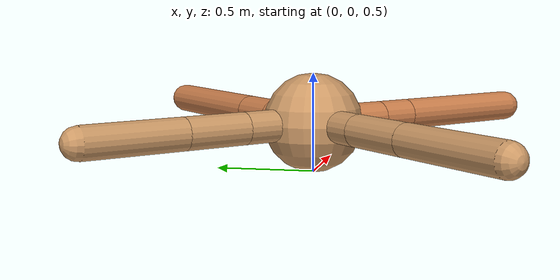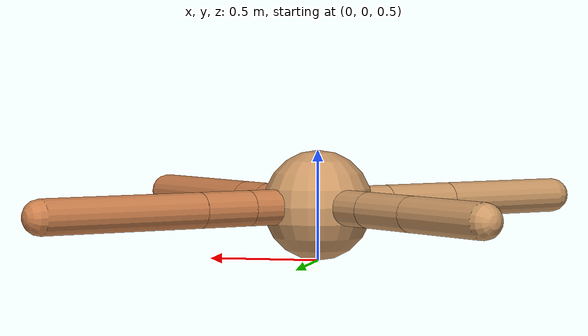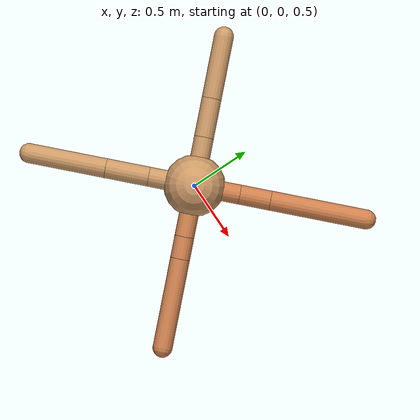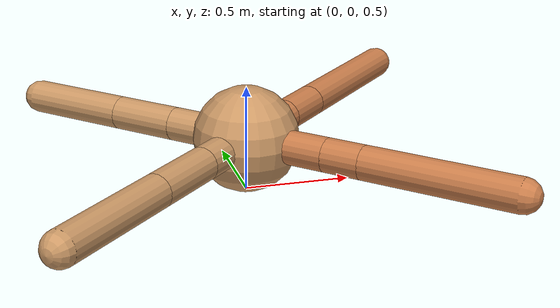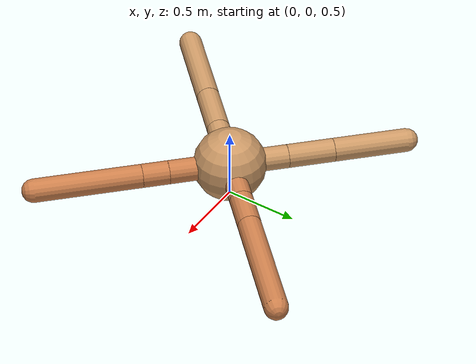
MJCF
<mujoco model="ant">
  <compiler angle="degree" coordinate="local" inertiafromgeom="true" />
  <option integrator="RK4" timestep="0.01" />
  <custom>
    <numeric data="0.0 0.0 0.55 1.0 0.0 0.0 0.0 0.0 1.0 0.0 -1.0 0.0 -1.0 0.0 1.0" name="init_qpos" />
  </custom>
  <default>
    <joint armature="1" damping="1" limited="true" />
    <geom conaffinity="0" condim="3" density="5.0" friction="1.5 0.1 0.1" margin="0.01" rgba="0.8 0.6 0.4 1" />
  </default>
  <worldbody>
    <body name="torso" pos="0 0 0.75">
      <geom name="torso_geom" pos="0 0 0" size="0.25" type="sphere" />

      <body name="front_left_leg" pos="0 0 0">
        <geom fromto="0.0 0.0 0.0 0.2619217838951128 0.2619217838951128 0.0" name="aux_1_geom" size="0.08" type="capsule" rgba=".8 .5 .3 1" />
        <body name="aux_1" pos="0.2619217838951128 0.2619217838951128 0.0">
          <joint axis="0 0 1" name="hip_1" pos="0.0 0.0 0.0" range="-40 40" type="hinge" />
          <geom fromto="0.0 0.0 0.0 0.17774237253179162 0.17774237253179162 0.0" name="left_leg_geom" size="0.08" type="capsule" rgba=".8 .5 .3 1" />
          <body pos="0.17774237253179162 0.17774237253179162 0.0" name="front_left_foot">
            <joint axis="-1 1 0" name="ankle_1" pos="0.0 0.0 0.0" range="30 100" type="hinge" />
            <geom fromto="0.0 0.0 0.0 0.5574379036855691 0.5574379036855691 0.0" name="left_ankle_geom" size="0.08" type="capsule" rgba=".8 .5 .3 1" />
          </body>
        </body>
      </body>
      <body name="front_right_leg" pos="0 0 0">
        <geom fromto="0.0 0.0 0.0 -0.2805368698581662 0.2805368698581662 0.0" name="aux_2_geom" size="0.08" type="capsule" />
        <body name="aux_2" pos="-0.2805368698581662 0.2805368698581662 0.0">
          <joint axis="0 0 1" name="hip_2" pos="0.0 0.0 0.0" range="-40 40" type="hinge" />
          <geom fromto="0.0 0.0 0.0 -0.22552064038131397 0.22552064038131397 0.0" name="right_leg_geom" size="0.08" type="capsule" />
          <body pos="-0.22552064038131397 0.22552064038131397 0.0" name="front_right_foot">
            <joint axis="1 1 0" name="ankle_2" pos="0.0 0.0 0.0" range="-100 -30" type="hinge" />
            <geom fromto="0.0 0.0 0.0 -0.3601599362762927 0.3601599362762927 0.0" name="right_ankle_geom" size="0.08" type="capsule" />
          </body>
        </body>
      </body>
      <body name="left_back_leg" pos="0 0 0">
        <geom fromto="0.0 0.0 0.0 -0.2656925444510207 -0.2656925444510207 0.0" name="aux_3_geom" size="0.08" type="capsule" />
        <body name="aux_3" pos="-0.2656925444510207 -0.2656925444510207 0.0">
          <joint axis="0 0 1" name="hip_3" pos="0.0 0.0 0.0" range="-40 40" type="hinge" />
          <geom fromto="0.0 0.0 0.0 -0.24968765554127162 -0.24968765554127162 0.0" name="back_leg_geom" size="0.08" type="capsule" />
          <body pos="-0.24968765554127162 -0.24968765554127162 0.0" name="left_back_foot">
            <joint axis="-1 1 0" name="ankle_3" pos="0.0 0.0 0.0" range="-100 -30" type="hinge" />
            <geom fromto="0.0 0.0 0.0 -0.44388706283632545 -0.44388706283632545 0.0" name="third_ankle_geom" size="0.08" type="capsule" />
          </body>
        </body>
      </body>
      <body name="right_back_leg" pos="0 0 0">
        <geom fromto="0.0 0.0 0.0 0.2964769481027542 -0.2964769481027542 0.0" name="aux_4_geom" size="0.08" type="capsule" rgba=".8 .5 .3 1" />
        <body name="aux_4" pos="0.2964769481027542 -0.2964769481027542 0.0">
          <joint axis="0 0 1" name="hip_4" pos="0.0 0.0 0.0" range="-40 40" type="hinge" />
          <geom fromto="0.0 0.0 0.0 0.12825459007465667 -0.12825459007465667 0.0" name="rightback_leg_geom" size="0.08" type="capsule" rgba=".8 .5 .3 1" />
          <body pos="0.12825459007465667 -0.12825459007465667 0.0" name="right_back_foot">
            <joint axis="1 1 0" name="ankle_4" pos="0.0 0.0 0.0" range="30 100" type="hinge" />
            <geom fromto="0.0 0.0 0.0 0.5165763319447992 -0.5165763319447992 0.0" name="fourth_ankle_geom" size="0.08" type="capsule" rgba=".8 .5 .3 1" />
          </body>
        </body>
      </body>
    </body>
  </worldbody>
  <actuator>
    <motor ctrllimited="true" ctrlrange="-1.0 1.0" joint="hip_4" gear="150" />
    <motor ctrllimited="true" ctrlrange="-1.0 1.0" joint="ankle_4" gear="150" />
    <motor ctrllimited="true" ctrlrange="-1.0 1.0" joint="hip_1" gear="150" />
    <motor ctrllimited="true" ctrlrange="-1.0 1.0" joint="ankle_1" gear="150" />
    <motor ctrllimited="true" ctrlrange="-1.0 1.0" joint="hip_2" gear="150" />
    <motor ctrllimited="true" ctrlrange="-1.0 1.0" joint="ankle_2" gear="150" />
    <motor ctrllimited="true" ctrlrange="-1.0 1.0" joint="hip_3" gear="150" />
    <motor ctrllimited="true" ctrlrange="-1.0 1.0" joint="ankle_3" gear="150" />
  </actuator>
</mujoco>
